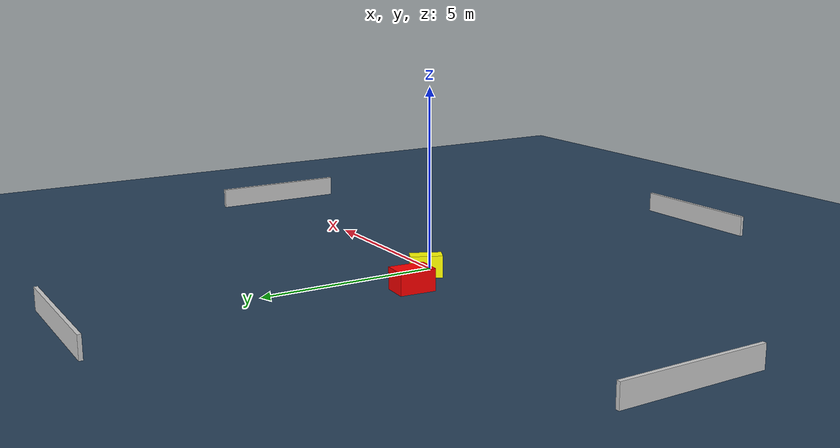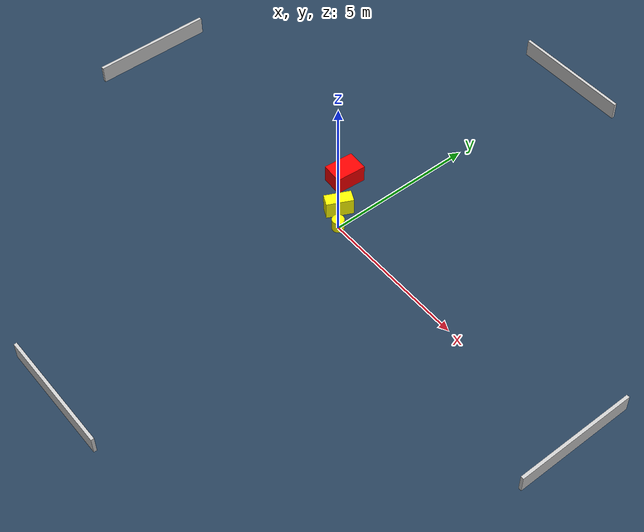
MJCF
<?xml version="1.0" ?>
<mujoco model="generated_environment">
  <option timestep="0.01" integrator="RK4" cone="elliptic"/>
  <default>
    <geom density="1"/>
  </default>
  <asset>
    <texture builtin="gradient" height="3072" name="skybox" rgb1="0.3 0.5 0.7" rgb2="0 0 0" type="skybox" width="512"/>
    <texture builtin="checker" height="300" name="groundplane" rgb1="0.2 0.3 0.4" rgb2="0.1 0.2 0.3" type="2d" width="300"/>
    <material name="groundplane" reflectance="0.2" texrepeat="5 5" texture="groundplane"/>
  </asset>
  <worldbody>
    <light dir="0 0 -1" directional="true" pos="0 0 1.5"/>
    <geom condim="3" friction="0.5 0.005 0.001" material="groundplane" name="floor" pos="0 0 0" size="0 0 0.05" type="plane"/>
    <body name="walls">
      <geom name="wall_1" condim="4" pos="-10.0 0.0 0.3" rgba="0.800000011920929 0.800000011920929 0.800000011920929 1.0" size="0.05 2.0 0.3" type="box"/>
      <geom name="wall_2" condim="4" pos="10.0 0.0 0.3" rgba="0.800000011920929 0.800000011920929 0.800000011920929 1.0" size="0.05 2.0 0.3" type="box"/>
      <geom name="wall_3" condim="4" pos="0.0 -10.0 0.3" rgba="0.800000011920929 0.800000011920929 0.800000011920929 1.0" size="2.0 0.05 0.3" type="box"/>
      <geom name="wall_4" condim="4" pos="0.0 10.0 0.3" rgba="0.800000011920929 0.800000011920929 0.800000011920929 1.0" size="2.0 0.05 0.3" type="box"/>
    </body>
    <body name="robot">
      <joint name="joint_x" type="slide" pos="0 0 0" axis="1 0 0"/>
      <joint name="joint_y" type="slide" pos="0 0 0" axis="0 1 0"/>
      <geom name="robot" type="cylinder" pos="0.0 0.0 0.2" size="0.2 0.2 0.0" mass="5.0" friction="1.0 0.005 0.0001" condim="4" rgba="1.0 1.0 0.0 1.0"/>
    </body>
    <body name="obstacle_1_movable">
      <geom name="obstacle_1_movable" condim="4" pos="-0.5277005315656172 0.4507374206908541 0.3" euler="0 0 64.03363704081744" friction="0.0 0.005 0.001" rgba="1.0 1.0 0.0 1.0" size="0.4371278743407077 0.2025211647282581 0.3" type="box" mass="0.1"/>
      <joint type="free"/>
    </body>
    <body name="obstacle_2_static">
      <geom name="obstacle_2_static" condim="4" pos="-1.4139506775490862 1.4128941130671848 0.3" euler="0 0 265.95902417315176" friction="0.0 0.005 0.001" rgba="1.0 0.0 0.0 1.0" size="0.5013513842048947 0.35856382364481454 0.3" type="box"/>
    </body>
  </worldbody>
  <actuator>
    <motor name="actuator_x" joint="joint_x" gear="1" ctrlrange="-1 1"/>
    <motor name="actuator_y" joint="joint_y" gear="1" ctrlrange="-1 1"/>
  </actuator>
</mujoco>
